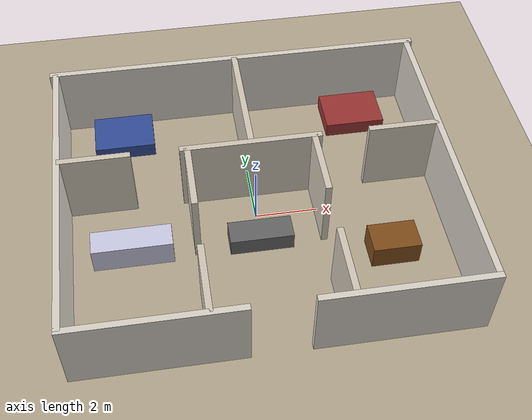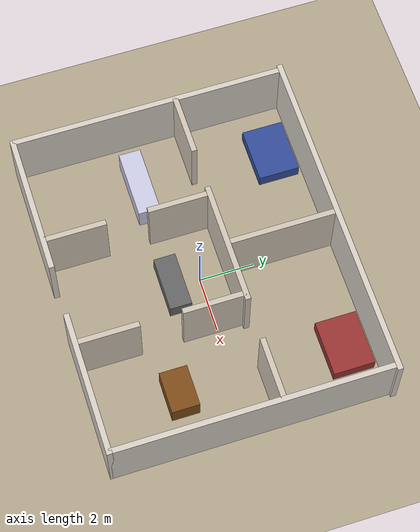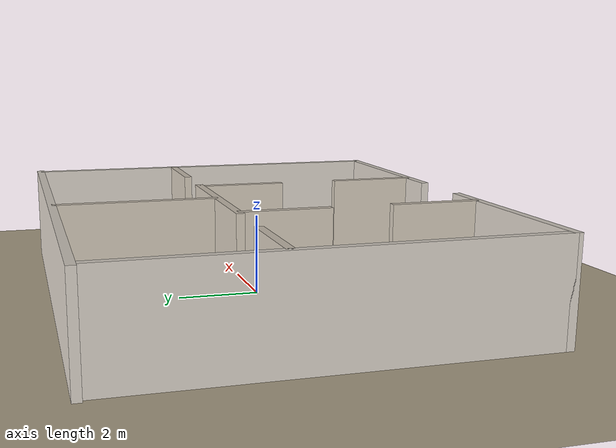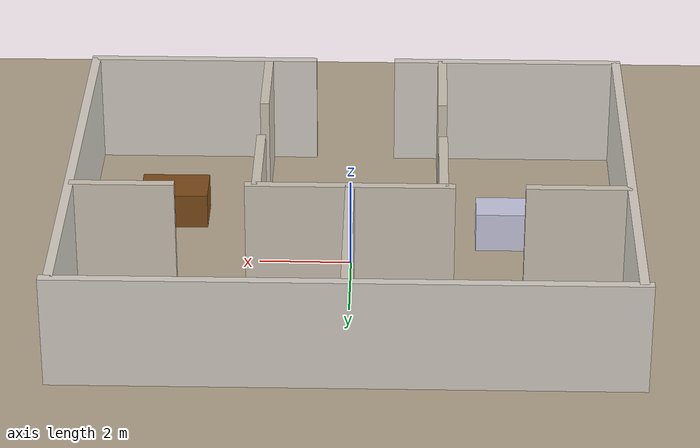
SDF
<?xml version="1.0" ?>
<sdf version="1.8">
  <world name="simple_home">

    <!-- ===== Required Ignition Gazebo System Plugins ===== -->
    <plugin filename="libignition-gazebo-physics-system.so" name="ignition::gazebo::systems::Physics"/>
    <plugin filename="libignition-gazebo-user-commands-system.so" name="ignition::gazebo::systems::UserCommands"/>
    <plugin filename="libignition-gazebo-scene-broadcaster-system.so" name="ignition::gazebo::systems::SceneBroadcaster"/>
    <plugin filename="libignition-gazebo-contact-system.so" name="ignition::gazebo::systems::Contact"/>

    <!-- ===== Lighting ===== -->
    <light type="directional" name="sun">
      <cast_shadows>true</cast_shadows>
      <pose>0 0 10 0 0 0</pose>
      <diffuse>0.9 0.9 0.9 1</diffuse>
      <specular>0.3 0.3 0.3 1</specular>
      <direction>-0.5 0.1 -0.9</direction>
    </light>

    <!-- ===== Floor ===== -->
    <model name="floor">
      <static>true</static>
      <link name="link">
        <collision name="collision">
          <geometry><plane><normal>0 0 1</normal><size>20 20</size></plane></geometry>
        </collision>
        <visual name="visual">
          <geometry><plane><normal>0 0 1</normal><size>20 20</size></plane></geometry>
          <material>
            <ambient>0.7 0.65 0.55 1</ambient>
            <diffuse>0.7 0.65 0.55 1</diffuse>
          </material>
        </visual>
      </link>
    </model>

    <!-- ===== Outer Walls (12m x 10m) ===== -->

    <!-- North Wall -->
    <model name="wall_north">
      <static>true</static>
      <pose>0 5 1.25 0 0 0</pose>
      <link name="link">
        <collision name="col"><geometry><box><size>12.4 0.2 2.5</size></box></geometry></collision>
        <visual name="vis">
          <geometry><box><size>12.4 0.2 2.5</size></box></geometry>
          <material><ambient>0.85 0.82 0.78 1</ambient><diffuse>0.85 0.82 0.78 1</diffuse></material>
        </visual>
      </link>
    </model>

    <!-- West Wall -->
    <model name="wall_west">
      <static>true</static>
      <pose>-6 0 1.25 0 0 0</pose>
      <link name="link">
        <collision name="col"><geometry><box><size>0.2 10 2.5</size></box></geometry></collision>
        <visual name="vis">
          <geometry><box><size>0.2 10 2.5</size></box></geometry>
          <material><ambient>0.85 0.82 0.78 1</ambient><diffuse>0.85 0.82 0.78 1</diffuse></material>
        </visual>
      </link>
    </model>

    <!-- East Wall -->
    <model name="wall_east">
      <static>true</static>
      <pose>6 0 1.25 0 0 0</pose>
      <link name="link">
        <collision name="col"><geometry><box><size>0.2 10 2.5</size></box></geometry></collision>
        <visual name="vis">
          <geometry><box><size>0.2 10 2.5</size></box></geometry>
          <material><ambient>0.85 0.82 0.78 1</ambient><diffuse>0.85 0.82 0.78 1</diffuse></material>
        </visual>
      </link>
    </model>

    <!-- South Wall Left (West side of main door) -->
    <model name="wall_south_left">
      <static>true</static>
      <pose>-3.5 -5 1.25 0 0 0</pose>
      <link name="link">
        <collision name="col"><geometry><box><size>5.2 0.2 2.5</size></box></geometry></collision>
        <visual name="vis">
          <geometry><box><size>5.2 0.2 2.5</size></box></geometry>
          <material><ambient>0.85 0.82 0.78 1</ambient><diffuse>0.85 0.82 0.78 1</diffuse></material>
        </visual>
      </link>
    </model>

    <!-- South Wall Right (East side of main door) -->
    <!-- The gap between Left and Right is 2 meters wide for the Main Door -->
    <model name="wall_south_right">
      <static>true</static>
      <pose>3.5 -5 1.25 0 0 0</pose>
      <link name="link">
        <collision name="col"><geometry><box><size>5.2 0.2 2.5</size></box></geometry></collision>
        <visual name="vis">
          <geometry><box><size>5.2 0.2 2.5</size></box></geometry>
          <material><ambient>0.85 0.82 0.78 1</ambient><diffuse>0.85 0.82 0.78 1</diffuse></material>
        </visual>
      </link>
    </model>

    <!-- ===== Interior Dividers ===== -->

    <!-- Horizontal Divider H1 (separates Room 1 from Kitchen) -->
    <model name="divider_h1">
      <static>true</static>
      <pose>-4.875 1 1.25 0 0 0</pose>
      <link name="link">
        <collision name="col"><geometry><box><size>2.25 0.2 2.5</size></box></geometry></collision>
        <visual name="vis">
          <geometry><box><size>2.25 0.2 2.5</size></box></geometry>
          <material><ambient>0.82 0.78 0.72 1</ambient><diffuse>0.82 0.78 0.72 1</diffuse></material>
        </visual>
      </link>
    </model>

    <!-- Horizontal Divider H2 (separates Rooms from Hall) -->
    <!-- Room 1 and Room 2 doors are 1.5m wide gaps between H1/H2 and H2/H3 -->
    <model name="divider_h2">
      <static>true</static>
      <pose>0 1 1.25 0 0 0</pose>
      <link name="link">
        <collision name="col"><geometry><box><size>4.5 0.2 2.5</size></box></geometry></collision>
        <visual name="vis">
          <geometry><box><size>4.5 0.2 2.5</size></box></geometry>
          <material><ambient>0.82 0.78 0.72 1</ambient><diffuse>0.82 0.78 0.72 1</diffuse></material>
        </visual>
      </link>
    </model>

    <!-- Horizontal Divider H3 (separates Room 2 from Dining Area) -->
    <model name="divider_h3">
      <static>true</static>
      <pose>4.875 1 1.25 0 0 0</pose>
      <link name="link">
        <collision name="col"><geometry><box><size>2.25 0.2 2.5</size></box></geometry></collision>
        <visual name="vis">
          <geometry><box><size>2.25 0.2 2.5</size></box></geometry>
          <material><ambient>0.82 0.78 0.72 1</ambient><diffuse>0.82 0.78 0.72 1</diffuse></material>
        </visual>
      </link>
    </model>

    <!-- Vertical Divider (separates Room 1 and Room 2) -->
    <model name="divider_v_rooms">
      <static>true</static>
      <pose>0 3 1.25 0 0 0</pose>
      <link name="link">
        <collision name="col"><geometry><box><size>0.2 4 2.5</size></box></geometry></collision>
        <visual name="vis">
          <geometry><box><size>0.2 4 2.5</size></box></geometry>
          <material><ambient>0.82 0.78 0.72 1</ambient><diffuse>0.82 0.78 0.72 1</diffuse></material>
        </visual>
      </link>
    </model>

    <!-- Vertical Divider (separates Kitchen from Hall, Top part) -->
    <model name="divider_v_kitchen_1">
      <static>true</static>
      <pose>-2 -0.125 1.25 0 0 0</pose>
      <link name="link">
        <collision name="col"><geometry><box><size>0.2 2.25 2.5</size></box></geometry></collision>
        <visual name="vis">
          <geometry><box><size>0.2 2.25 2.5</size></box></geometry>
          <material><ambient>0.82 0.78 0.72 1</ambient><diffuse>0.82 0.78 0.72 1</diffuse></material>
        </visual>
      </link>
    </model>

    <!-- Vertical Divider (separates Kitchen from Hall, Bottom part) -->
    <!-- 1.5m gap for Kitchen door -->
    <model name="divider_v_kitchen_2">
      <static>true</static>
      <pose>-2 -3.875 1.25 0 0 0</pose>
      <link name="link">
        <collision name="col"><geometry><box><size>0.2 2.25 2.5</size></box></geometry></collision>
        <visual name="vis">
          <geometry><box><size>0.2 2.25 2.5</size></box></geometry>
          <material><ambient>0.82 0.78 0.72 1</ambient><diffuse>0.82 0.78 0.72 1</diffuse></material>
        </visual>
      </link>
    </model>

    <!-- Vertical Divider (separates Dining from Hall, Top part) -->
    <model name="divider_v_dining_1">
      <static>true</static>
      <pose>2 -0.125 1.25 0 0 0</pose>
      <link name="link">
        <collision name="col"><geometry><box><size>0.2 2.25 2.5</size></box></geometry></collision>
        <visual name="vis">
          <geometry><box><size>0.2 2.25 2.5</size></box></geometry>
          <material><ambient>0.82 0.78 0.72 1</ambient><diffuse>0.82 0.78 0.72 1</diffuse></material>
        </visual>
      </link>
    </model>

    <!-- Vertical Divider (separates Dining from Hall, Bottom part) -->
    <!-- 1.5m gap for Dining area door -->
    <model name="divider_v_dining_2">
      <static>true</static>
      <pose>2 -3.875 1.25 0 0 0</pose>
      <link name="link">
        <collision name="col"><geometry><box><size>0.2 2.25 2.5</size></box></geometry></collision>
        <visual name="vis">
          <geometry><box><size>0.2 2.25 2.5</size></box></geometry>
          <material><ambient>0.82 0.78 0.72 1</ambient><diffuse>0.82 0.78 0.72 1</diffuse></material>
        </visual>
      </link>
    </model>

    <!-- ===== Solid Block Furniture (All dimensions > 0.4m) ===== -->

    <!-- Sofa in Hall -->
    <model name="sofa_block">
      <static>true</static>
      <pose>0 -1.0 0.3 0 0 0</pose>
      <link name="link">
        <collision name="col"><geometry><box><size>2.0 0.8 0.6</size></box></geometry></collision>
        <visual name="vis">
          <geometry><box><size>2.0 0.8 0.6</size></box></geometry>
          <material><ambient>0.4 0.4 0.4 1</ambient><diffuse>0.4 0.4 0.4 1</diffuse></material>
        </visual>
      </link>
    </model>

    <!-- Dining Table in Dining Area -->
    <model name="dining_table_block">
      <static>true</static>
      <pose>4.0 -2.0 0.4 0 0 0</pose>
      <link name="link">
        <collision name="col"><geometry><box><size>1.5 1.0 0.8</size></box></geometry></collision>
        <visual name="vis">
          <geometry><box><size>1.5 1.0 0.8</size></box></geometry>
          <material><ambient>0.5 0.3 0.1 1</ambient><diffuse>0.5 0.3 0.1 1</diffuse></material>
        </visual>
      </link>
    </model>

    <!-- Kitchen Counter in Kitchen -->
    <model name="kitchen_counter_block">
      <static>true</static>
      <pose>-4.0 -1.0 0.45 0 0 0</pose>
      <link name="link">
        <collision name="col"><geometry><box><size>2.5 0.8 0.9</size></box></geometry></collision>
        <visual name="vis">
          <geometry><box><size>2.5 0.8 0.9</size></box></geometry>
          <material><ambient>0.8 0.8 0.9 1</ambient><diffuse>0.8 0.8 0.9 1</diffuse></material>
        </visual>
      </link>
    </model>

    <!-- Bed in Room 1 -->
    <model name="bed_1_block">
      <static>true</static>
      <pose>-4.0 4.0 0.25 0 0 0</pose>
      <link name="link">
        <collision name="col"><geometry><box><size>2.0 1.5 0.5</size></box></geometry></collision>
        <visual name="vis">
          <geometry><box><size>2.0 1.5 0.5</size></box></geometry>
          <material><ambient>0.2 0.3 0.6 1</ambient><diffuse>0.2 0.3 0.6 1</diffuse></material>
        </visual>
      </link>
    </model>

    <!-- Bed in Room 2 -->
    <model name="bed_2_block">
      <static>true</static>
      <pose>4.0 4.0 0.25 0 0 0</pose>
      <link name="link">
        <collision name="col"><geometry><box><size>2.0 1.5 0.5</size></box></geometry></collision>
        <visual name="vis">
          <geometry><box><size>2.0 1.5 0.5</size></box></geometry>
          <material><ambient>0.6 0.2 0.2 1</ambient><diffuse>0.6 0.2 0.2 1</diffuse></material>
        </visual>
      </link>
    </model>

  </world>
</sdf>
